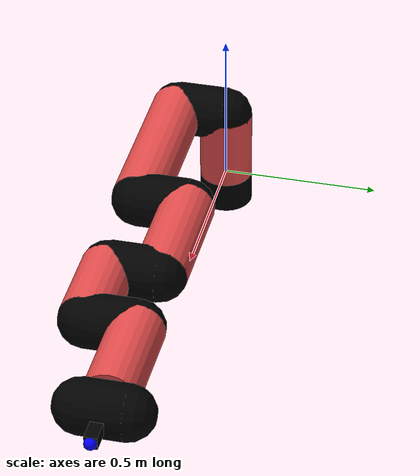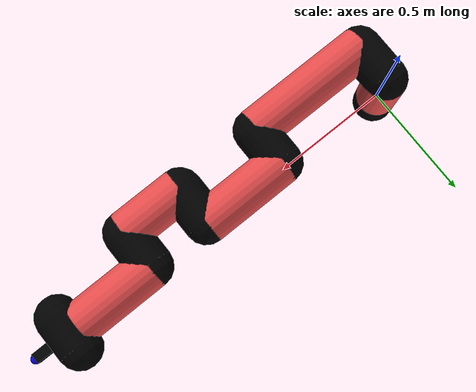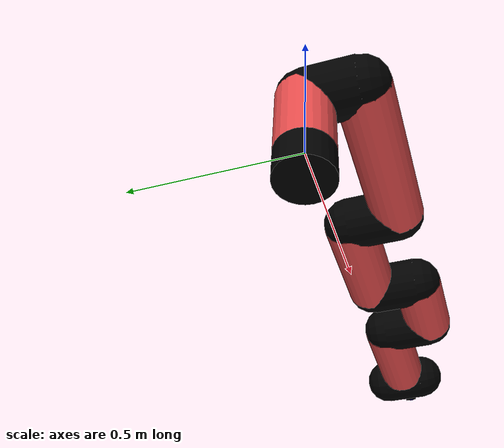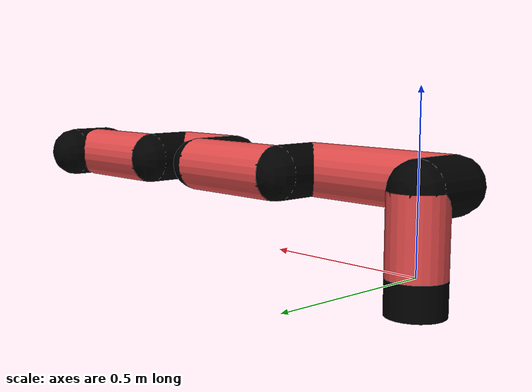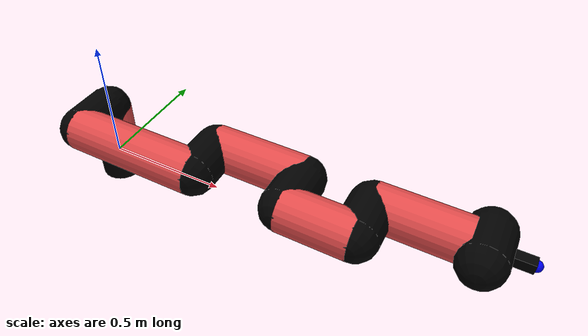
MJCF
<mujoco model="manipulator">
		<compiler angle="degree" coordinate="local" inertiafromgeom="auto" meshdir="meshes/"/>
		<option gravity="0 0 0" integrator="RK4" iterations="30" timestep="0.01"/>

		<default>
		<joint armature="1" limited="true" stiffness="10" damping="15" frictionloss="5.0"/>
		<geom conaffinity="1" condim="3" contype="1" friction=".5 .1 .1" margin="0.002"/>
		<motor ctrllimited="true"/>
		<position ctrllimited="true"/>
		</default>

		<asset>
		<texture builtin="gradient" height="100" rgb1="1.0 1.0 1.0" rgb2="1.0 1.0 1.0" type="skybox" width="100"/>
		<texture builtin="flat" height="32" name="arm_tex" rgb1="0.9 0.3 0.3" type="2d" width="32"/>
		<texture builtin="flat" height="32" name="gripper_tex" rgb1="0.0 0.0 0.0" type="cube" width="32"/>

		<material name="arm_mat" shininess="0.1" specular="0.1" texture="arm_tex"/>
		<material name="gripper_mat" shininess="1" specular="1" texture="gripper_tex"/>
		</asset>

		<worldbody>
		<light cutoff="45" diffuse=".8 .8 .8" dir="0 0.16 -1" directional="false" name="light" pos="0 -2.0 8.0" specular="0.3 0.3 0.3"/>

		<body name="base_link" pos="0 0 -0.1">
		<geom fromto="0 0 0 0 0 0.1" material="arm_mat" name="base_link" rgba="0.0 0.0 0.0 1" size="0.085" type="cylinder"/>
		</body>

		<body name="l1" pos="0 0 0">
<geom fromto="0 0 0 0 0 0.23" material="arm_mat" name="l1" rgba="0.9 0.3 0.3 1" size="0.085" type="cylinder"/>
<geom fromto="0 0 0.23 0 -0.16 0.23" material="arm_mat" name="l1_ex" rgba="0.0 0.0 0.0 1" size="0.085" type="capsule"/>
<joint axis="0 0 1" name="j1" pos="0 0 0" range="-90 90" damping="22.66" frictionloss="12.41"/>

<body name="l2" pos="0 -0.16 0.23">
<geom fromto="0 0 0 0.52 0 0" material="arm_mat" name="l2" rgba="0.9 0.3 0.3 1" size="0.085" type="cylinder"/>
<geom fromto="0.52 0 0 0.52 0.16 0" material="arm_mat" name="l2_ex" rgba="0.0 0.0 0.0 1" size="0.085" type="capsule"/>
<joint axis="-0.19 0.82 0.0" name="j2" pos="0 0 0" range="-90 60" damping="29.25" frictionloss="9.07"/>

<body name="l3" pos="0.52 0.16 0">
<geom fromto="0 0 0 0.36 0 0" material="arm_mat" name="l3" rgba="0.9 0.3 0.3 1" size="0.085" type="cylinder"/>
<geom fromto="0.36 0 0 0.36 -0.16 0" material="arm_mat" name="l3_ex" rgba="0.0 0.0 0.0 1" size="0.085" type="capsule"/>
<joint axis="-0.24 1.22 0.16" name="j3" pos="0 0 0" range="-30 60" damping="37.05" frictionloss="12.35"/>

<body name="l4" pos="0.36 -0.16 0">
<geom fromto="0 0 0 0.26 0 0" material="arm_mat" name="l4" rgba="0.9 0.3 0.3 1" size="0.085" type="cylinder"/>
<geom fromto="0.26 0 0 0.26 0.16 0" material="arm_mat" name="l4_ex" rgba="0.0 0.0 0.0 1" size="0.085" type="capsule"/>
<joint axis="-0.24 0.84 -0.08" name="j4" pos="0 0 0" range="-30 60" damping="31.77" frictionloss="12.4"/>

<body name="l5" pos="0.26 0.16 0">
<geom fromto="0 0 0 0.33 0 0" material="arm_mat" name="l5" rgba="0.9 0.3 0.3 1" size="0.085" type="cylinder"/>
<joint axis="-0.18 1.15 -0.08" name="j5" pos="0 0 0" range="-30 60" damping="32.43" frictionloss="8.8"/>

<body name="gripper" pos="0.33 0 0">
<geom fromto="0.05 -0.07 0 0.05 0.07 0" material="gripper_mat" name="gripper" rgba="0.0 0.0 0.0 1" size="0.085" type="capsule"/><joint axis="1 0 0" name="j6" pos="0 0 0" range="-90 90" damping="15" frictionloss="5.0"/><body name="finger" pos="0.1 0 0">
<geom fromto="0 0.0 0 0.1 0.0 0" material="gripper_mat" name="finger" rgba="0.0 0.0 0.0 1" size="0.020 0.06 0.06" type="box"/>
</body>
<site name="current" pos="0.2 0. 0.0" rgba="0. 0. 1.0 1" size="0.02" type="sphere"/>
</body>
</body>
</body>
</body>
</body>
</body>
</worldbody>
<actuator>
<motor ctrllimited="true" ctrlrange="-1.0 1.0" joint="j1" gear="71.82"/>
<motor ctrllimited="true" ctrlrange="-1.0 1.0" joint="j2" gear="62.52"/>
<motor ctrllimited="true" ctrlrange="-1.0 1.0" joint="j3" gear="64.45"/>
<motor ctrllimited="true" ctrlrange="-1.0 1.0" joint="j4" gear="81.72"/>
<motor ctrllimited="true" ctrlrange="-1.0 1.0" joint="j5" gear="81.66"/>
<motor ctrllimited="true" ctrlrange="-1.0 1.0" joint="j6" gear="80"/>
</actuator>
</mujoco>
